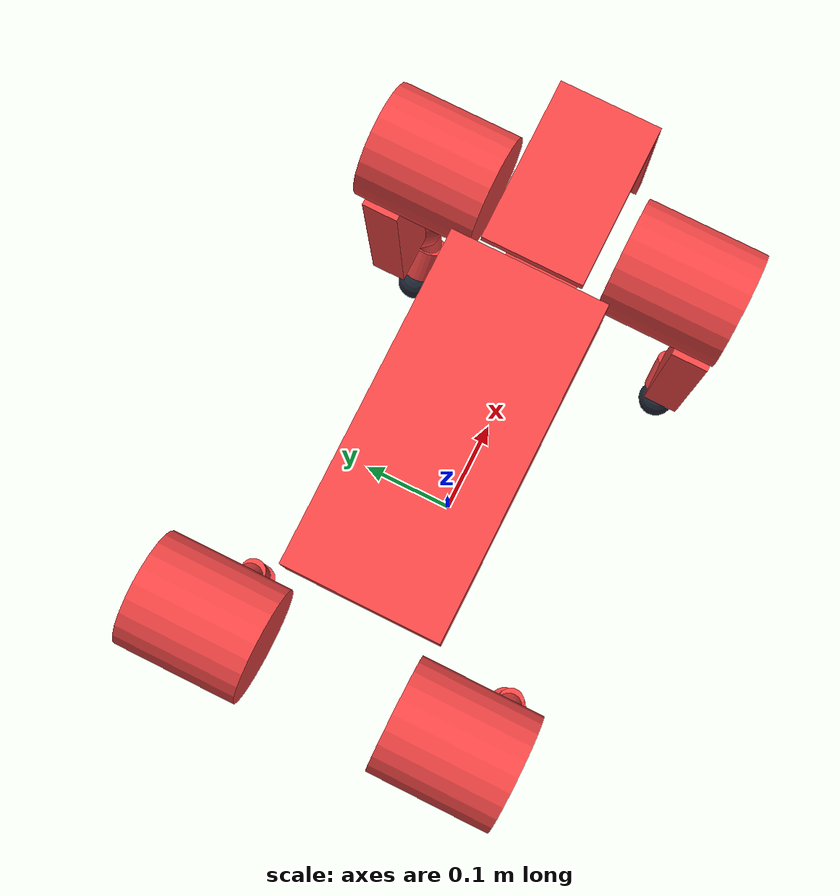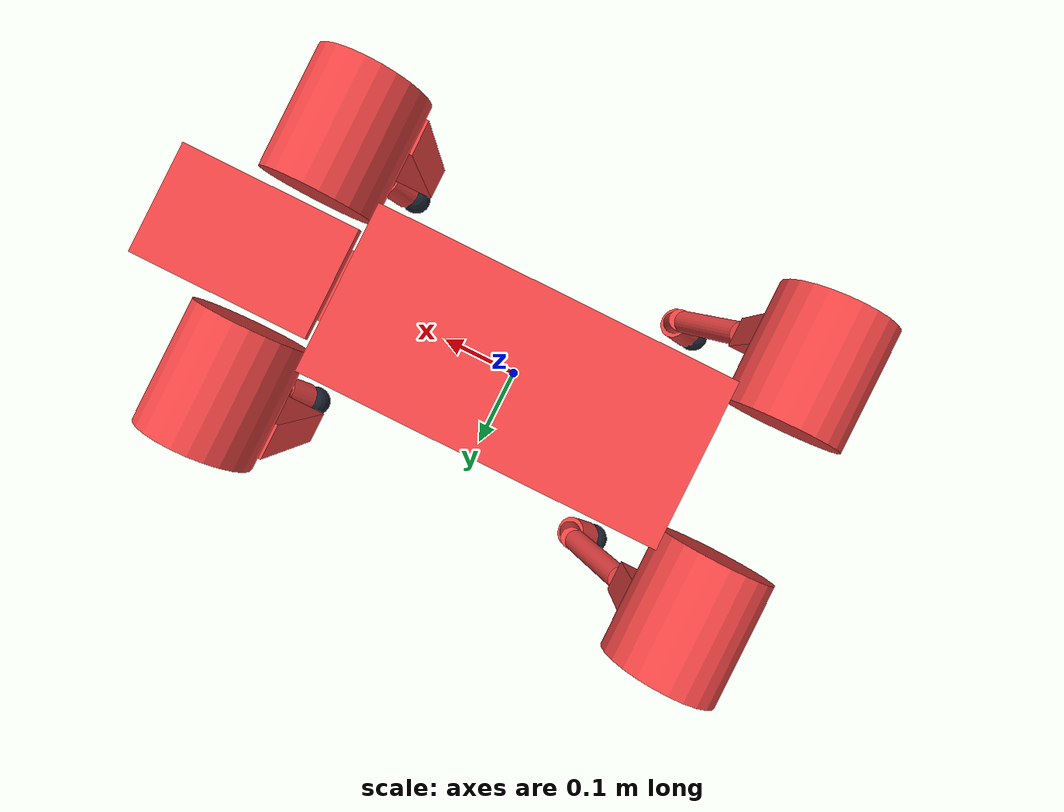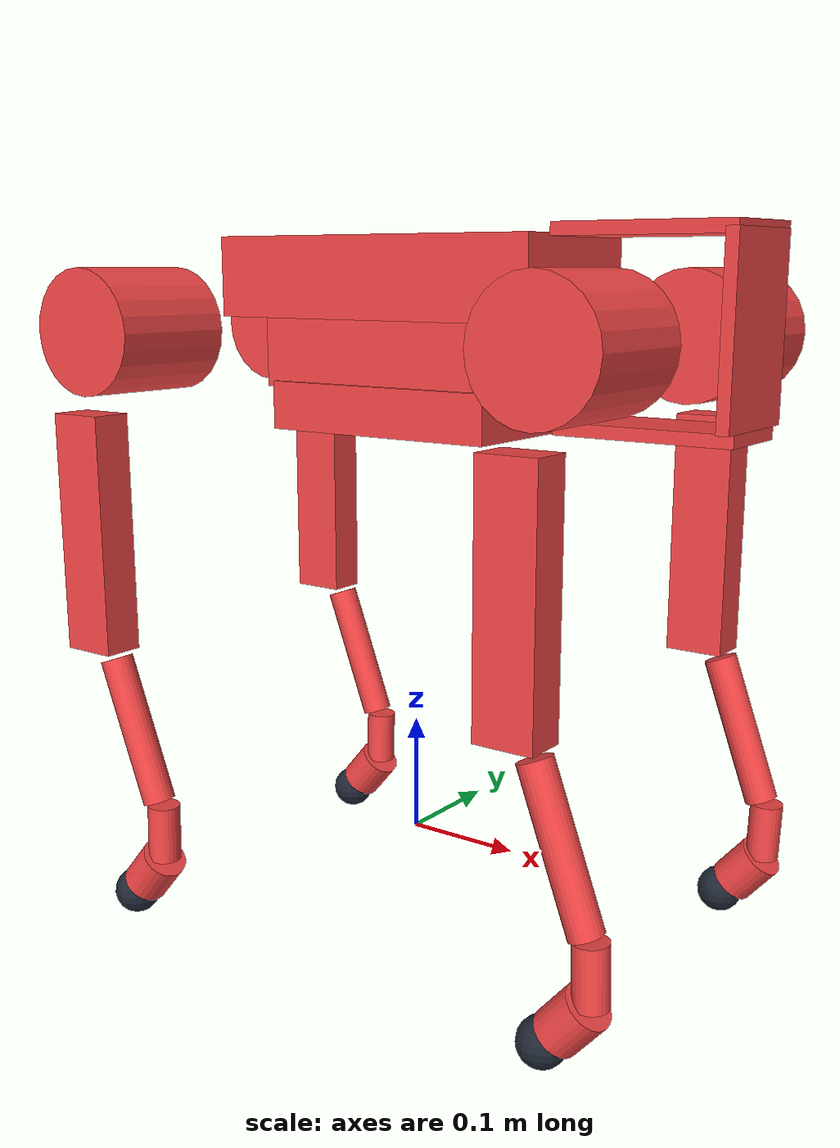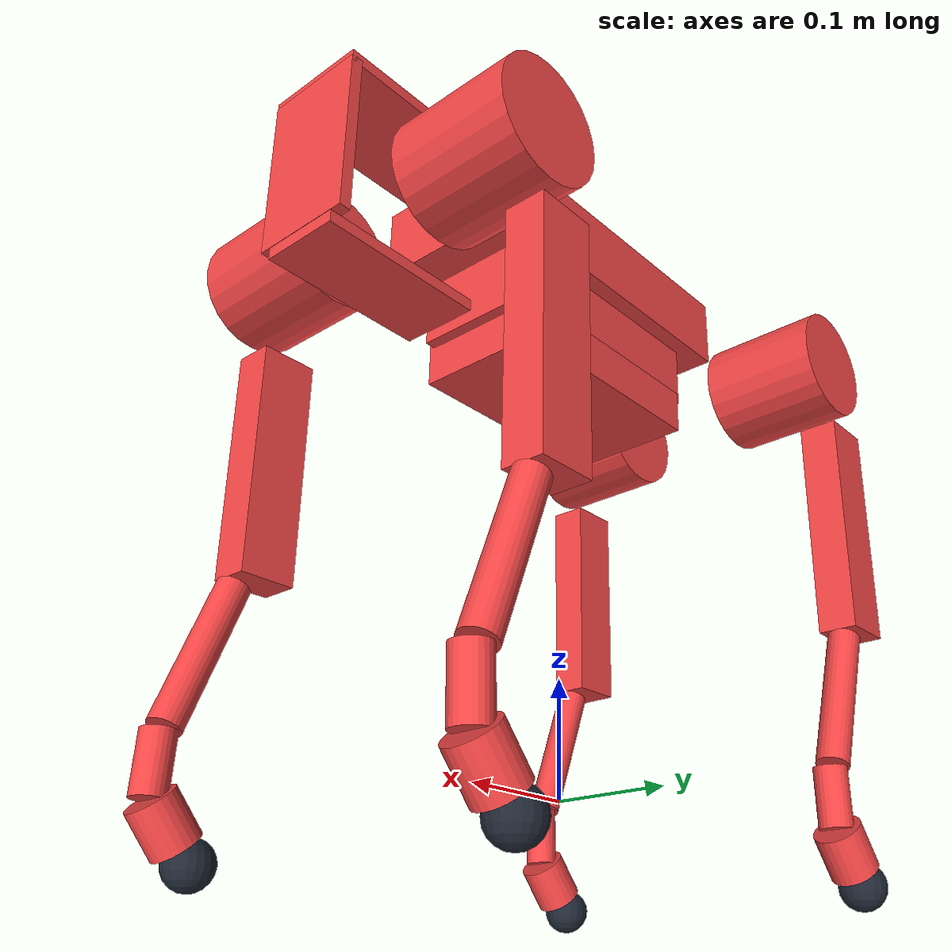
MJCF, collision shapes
<mujoco model="black_description">
  <compiler angle="radian" meshdir="assets" />
  <option timestep="0.002" gravity="0 0 -9.81" cone="elliptic" impratio="100" />

  <default>
    <joint damping="0.1" armature="0.01" frictionloss="0.2" />
  </default>
  <asset>
    <mesh name="trunk" file="trunk.STL" />
    <mesh name="d435" file="d435.stl" />
    <mesh name="FL_hip" file="FL_hip.STL" />
    <mesh name="FL_thigh" file="FL_thigh.STL" />
    <mesh name="FL_calf" file="FL_calf.STL" />
    <mesh name="FR_hip" file="FR_hip.STL" />
    <mesh name="FR_thigh" file="FR_thigh.STL" />
    <mesh name="FR_calf" file="FR_calf.STL" />
    <mesh name="RR_hip" file="RR_hip.STL" />
    <mesh name="RR_thigh" file="RR_thigh.STL" />
    <mesh name="RR_calf" file="RR_calf.STL" />
    <mesh name="RL_hip" file="RL_hip.STL" />
    <mesh name="RL_thigh" file="RL_thigh.STL" />
    <mesh name="RL_calf" file="RL_calf.STL" />
    <material name="trunk_mat" rgba="0.7529 0.7529 0.7529 1" specular="0" />
    <material name="imu_link_mat" rgba="0.8 0 0 1" specular="0" />
    <material name="d435_link_mat" rgba="0.15 0.15 0.15 1" specular="0" />
    <material name="FL_hip_mat" rgba="0.7529 0.7529 0.7529 1" specular="0" />
    <material name="FL_thigh_mat" rgba="0.7529 0.7529 0.7529 1" specular="0" />
    <material name="FL_calf_mat" rgba="0.7529 0.7529 0.7529 1" specular="0" />
    <material name="FL_foot_mat" rgba="0.1177 0.149 0.2 1" specular="0" />
    <material name="FR_hip_mat" rgba="0.7529 0.7529 0.7529 1" specular="0" />
    <material name="FR_thigh_mat" rgba="0.7529 0.7529 0.7529 1" specular="0" />
    <material name="FR_calf_mat" rgba="0.7529 0.7529 0.7529 1" specular="0" />
    <material name="FR_foot_mat" rgba="0.1177 0.149 0.2 1" specular="0" />
    <material name="RR_hip_mat" rgba="0.7529 0.7529 0.7529 1" specular="0" />
    <material name="RR_thigh_mat" rgba="0.7529 0.7529 0.7529 1" specular="0" />
    <material name="RR_calf_mat" rgba="0.7529 0.7529 0.7529 1" specular="0" />
    <material name="RR_foot_mat" rgba="0.1177 0.149 0.2 1" specular="0" />
    <material name="RL_hip_mat" rgba="0.7529 0.7529 0.7529 1" specular="0" />
    <material name="RL_thigh_mat" rgba="0.7529 0.7529 0.7529 1" specular="0" />
    <material name="RL_calf_mat" rgba="0.7529 0.7529 0.7529 1" specular="0" />
    <material name="RL_foot_mat" rgba="0.1177 0.149 0.2 1" specular="0" />
  </asset>

  <contact>
    <exclude body1="trunk" body2="FR_thigh" />
    <exclude body1="trunk" body2="FL_thigh" />
  </contact>

  <worldbody>
    <body name="trunk" pos="0 0 0.5">
      <freejoint/>
      <inertial pos="-0.013095 -0.00005 -0.074252" mass="5.7042" fullinertia="0.0092853 0.0076386 0.012703 -0.0000026 0.0000017 -0.0000276"/>
      <geom pos="0 0 0" group="1" contype="0" conaffinity="0" material="trunk_mat" type="mesh" mesh="trunk" />
      <geom pos="0 0 -0.02" rgba="0.9373 0.2667 0.2667 1" group="3" contype="1" conaffinity="1" type="box" size="0.15 0.07 0.0325" />
      <geom pos="0 0 -0.08" rgba="0.9373 0.2667 0.2667 1" group="3" contype="1" conaffinity="1" type="box" size="0.115 0.055 0.03" />
      <geom pos="0 0 -0.125" rgba="0.9373 0.2667 0.2667 1" group="3" contype="1" conaffinity="1" type="box" size="0.105 0.06 0.02" />
      <geom pos="0.225 0 -0.13" rgba="0.9373 0.2667 0.2667 1" group="3" contype="1" conaffinity="1" type="box" size="0.0725 0.035 0.005" />
      <geom pos="0.225 0 0.015" rgba="0.9373 0.2667 0.2667 1" group="3" contype="1" conaffinity="1" type="box" size="0.0725 0.045 0.005" />
      <geom pos="0.293 0 -0.055" rgba="0.9373 0.2667 0.2667 1" group="3" contype="1" conaffinity="1" type="box" size="0.005 0.045 0.07" />
      <body name="imu_link" pos="0 0 0">
        <inertial pos="0 0 0" mass="0.001" diaginertia="0.0001 0.0001 0.0001"/>
        <geom pos="0 0 0" group="1" contype="0" conaffinity="0" material="imu_link_mat" type="box" size="0.0005 0.0005 0.0005" />
        <site name="imu" pos="0 0 0" quat="1 0 0 0" />
      </body>
      <body name="d435_link" pos="0.225 0 0.028">
        <inertial pos="0 0 -0.0125" mass="0.072" diaginertia="0.00002 0.00006 0.00006"/>
        <geom pos="0.07 0 -0.08" quat="0.3155095 0.6328142 0.6328142 0.3155095" group="1" contype="0" conaffinity="0" material="d435_link_mat" type="mesh" mesh="d435" />
      </body>
      <body name="FL_hip" pos="0.1566 0.060001 -0.06425">
        <joint name="FL_hip_joint" type="hinge" axis="1 0 0" limited="true" range="-0.5 0.5"/>
        <inertial pos="0.05138 0.014784 0.0000566" mass="0.60559" fullinertia="0.0003742 0.0006493 0.0003415 -0.0000088 0.000001 -0.0000001"/>
        <geom pos="0 0 0" group="1" contype="0" conaffinity="0" material="FL_hip_mat" type="mesh" mesh="FL_hip" />
        <geom pos="0.058 0.055 0" quat="0.7071068 0.7071068 0 0" rgba="0.9373 0.2667 0.2667 1" group="3" contype="1" conaffinity="1" type="cylinder" size="0.052 0.055" />
        <body name="FL_thigh" pos="0.056 0.0336 0" quat="0.7071055 0 0 0.7071081">
          <joint name="FL_thigh_joint" type="hinge" axis="1 0 0" limited="true" range="-1.2 1.6"/>
          <inertial pos="0.041449 0.004453 -0.021946" mass="0.91168" fullinertia="0.0018577 0.0013983 0.0005179 0 -0.0000002 0.0000051"/>
          <geom pos="0 0 0" group="1" contype="0" conaffinity="0" material="FL_thigh_mat" type="mesh" mesh="FL_thigh" />
          <geom pos="0.06 0.015 -0.17" rgba="0.9373 0.2667 0.2667 1" group="3" contype="1" conaffinity="1" type="box" size="0.0175 0.025 0.1025" />
          <body name="FL_calf" pos="0.0618 0 -0.25">
            <joint name="FL_calf_joint" type="hinge" axis="1 0 0" limited="true" range="-2.5 -0.85"/>
            <inertial pos="0.0000772 -0.024754 -0.14833" mass="0.24861" fullinertia="0.000929 0.0008561 0.0000889 0 0 -0.0002168"/>
            <geom pos="0 0 0" group="1" contype="0" conaffinity="0" material="FL_calf_mat" type="mesh" mesh="FL_calf" />
            <geom pos="0 -0.025 -0.09" quat="0.9843036 -0.1764835 0 0" rgba="0.9373 0.2667 0.2667 1" group="3" contype="1" conaffinity="1" type="cylinder" size="0.014 0.065" />
            <geom pos="0 -0.052 -0.178" quat="0.9998507 0.0172779 0 0" rgba="0.9373 0.2667 0.2667 1" group="3" contype="1" conaffinity="1" type="cylinder" size="0.014 0.025" />
            <geom pos="0 -0.038 -0.218" quat="0.9396926 0.3420201 0 0" rgba="0.9373 0.2667 0.2667 1" group="3" contype="1" conaffinity="1" type="cylinder" size="0.02 0.02" />
            <body name="FL_foot" pos="0 -0.013803 -0.24433">
              <inertial pos="0 0 0" mass="0.1" diaginertia="0.000016 0.000016 0.000016"/>
              <geom pos="0 0 0" group="1" contype="0" conaffinity="0" material="FL_foot_mat" type="sphere" size="0.02" />
              <geom pos="0 0 0" rgba="0.9373 0.2667 0.2667 1" group="3" contype="1" conaffinity="1" type="sphere" size="0.02" />
            </body>
          </body>
        </body>
      </body>
      <body name="FR_hip" pos="0.1566 -0.059999 -0.06425">
        <joint name="FR_hip_joint" type="hinge" axis="1 0 0" limited="true" range="-0.5 0.5"/>
        <inertial pos="0.05138 -0.014784 -0.0000566" mass="0.60559" fullinertia="0.0003742 0.0006493 0.0003415 0.0000088 -0.000001 -0.0000001"/>
        <geom pos="0 0 0" group="1" contype="0" conaffinity="0" material="FR_hip_mat" type="mesh" mesh="FR_hip" />
        <geom pos="0.058 -0.055 0" quat="0.7071068 0.7071068 0 0" rgba="0.9373 0.2667 0.2667 1" group="3" contype="1" conaffinity="1" type="cylinder" size="0.052 0.055" />
        <body name="FR_thigh" pos="0.056 -0.0336 0" quat="0.7071055 0 0 -0.7071081">
          <joint name="FR_thigh_joint" type="hinge" axis="1 0 0" limited="true" range="-1.6 1.2"/>
          <inertial pos="0.04152 -0.0043781 -0.022024" mass="0.91491" fullinertia="0.0018577 0.0013991 0.0005172 -0.0000001 -0.0000002 -0.0000031"/>
          <geom pos="0 0 0" group="1" contype="0" conaffinity="0" material="FR_thigh_mat" type="mesh" mesh="FR_thigh" />
          <geom pos="0.06 -0.015 -0.17" rgba="0.9373 0.2667 0.2667 1" group="3" contype="1" conaffinity="1" type="box" size="0.0175 0.025 0.1025" />
          <body name="FR_calf" pos="0.0618 0 -0.25">
            <joint name="FR_calf_joint" type="hinge" axis="1 0 0" limited="true" range="0.85 2.5"/>
            <inertial pos="-0.0000772 0.024754 -0.14833" mass="0.24861" fullinertia="0.000929 0.0008561 0.0000889 0 0 0.0002168"/>
            <geom pos="0 0 0" group="1" contype="0" conaffinity="0" material="FR_calf_mat" type="mesh" mesh="FR_calf" />
            <geom pos="0 0.025 -0.09" quat="0.9843036 0.1764835 0 0" rgba="0.9373 0.2667 0.2667 1" group="3" contype="1" conaffinity="1" type="cylinder" size="0.014 0.065" />
            <geom pos="0 0.052 -0.178" quat="0.9998507 0.0172779 0 0" rgba="0.9373 0.2667 0.2667 1" group="3" contype="1" conaffinity="1" type="cylinder" size="0.014 0.025" />
            <geom pos="0 0.038 -0.218" quat="0.9396926 -0.3420201 0 0" rgba="0.9373 0.2667 0.2667 1" group="3" contype="1" conaffinity="1" type="cylinder" size="0.02 0.02" />
            <body name="FR_foot" pos="0 0.013803 -0.24433">
              <inertial pos="0 0 0" mass="0.1" diaginertia="0.000016 0.000016 0.000016"/>
              <geom pos="0 0 0" group="1" contype="0" conaffinity="0" material="FR_foot_mat" type="sphere" size="0.02" />
              <geom pos="0 0 0" rgba="0.9373 0.2667 0.2667 1" group="3" contype="1" conaffinity="1" type="sphere" size="0.02" />
            </body>
          </body>
        </body>
      </body>
      <body name="RR_hip" pos="-0.1566 -0.059999 -0.06425" quat="-0.0000037 0 0 -1">
        <joint name="RR_hip_joint" type="hinge" axis="1 0 0" limited="true" range="-0.5 0.5"/>
        <inertial pos="0.05138 0.014784 0.0000566" mass="0.60559" fullinertia="0.0003742 0.0006493 0.0003415 -0.0000088 0.000001 -0.0000001"/>
        <geom pos="0 0 0" group="1" contype="0" conaffinity="0" material="RR_hip_mat" type="mesh" mesh="RR_hip" />
        <geom pos="0.058 0.055 0" quat="0.7071068 0.7071068 0 0" rgba="0.9373 0.2667 0.2667 1" group="3" contype="1" conaffinity="1" type="cylinder" size="0.052 0.055" />
        <body name="RR_thigh" pos="0.056 0.0336 0" quat="0.7071055 0 0 0.7071081">
          <joint name="RR_thigh_joint" type="hinge" axis="1 0 0" limited="true" range="-1.6 1.2"/>
          <inertial pos="0.04152 -0.0043784 -0.022024" mass="0.91491" fullinertia="0.0018577 0.0013991 0.0005172 -0.0000001 -0.0000002 -0.0000031"/>
          <geom pos="0 0 0" group="1" contype="0" conaffinity="0" material="RR_thigh_mat" type="mesh" mesh="RR_thigh" />
          <geom pos="0.06 -0.015 -0.17" rgba="0.9373 0.2667 0.2667 1" group="3" contype="1" conaffinity="1" type="box" size="0.0175 0.025 0.1025" />
          <body name="RR_calf" pos="0.0618 0 -0.25">
            <joint name="RR_calf_joint" type="hinge" axis="1 0 0" limited="true" range="0.85 2.5"/>
            <inertial pos="-0.0000772 0.024754 -0.14833" mass="0.24861" fullinertia="0.000929 0.0008561 0.0000889 0 0 0.0002168"/>
            <geom pos="0 0 0" group="1" contype="0" conaffinity="0" material="RR_calf_mat" type="mesh" mesh="RR_calf" />
            <geom pos="0 0.025 -0.09" quat="0.9843036 0.1764835 0 0" rgba="0.9373 0.2667 0.2667 1" group="3" contype="1" conaffinity="1" type="cylinder" size="0.014 0.065" />
            <geom pos="0 0.052 -0.178" quat="0.9998507 -0.0172779 0 0" rgba="0.9373 0.2667 0.2667 1" group="3" contype="1" conaffinity="1" type="cylinder" size="0.014 0.025" />
            <geom pos="0 0.038 -0.218" quat="0.9396926 -0.3420201 0 0" rgba="0.9373 0.2667 0.2667 1" group="3" contype="1" conaffinity="1" type="cylinder" size="0.02 0.02" />
            <body name="RR_foot" pos="0 0.013803 -0.24433">
              <inertial pos="0 0 0" mass="0.1" diaginertia="0.000016 0.000016 0.000016"/>
              <geom pos="0 0 0" group="1" contype="0" conaffinity="0" material="RR_foot_mat" type="sphere" size="0.02" />
              <geom pos="0 0 0" rgba="0.9373 0.2667 0.2667 1" group="3" contype="1" conaffinity="1" type="sphere" size="0.02" />
            </body>
          </body>
        </body>
      </body>
      <body name="RL_hip" pos="-0.1566 0.060001 -0.06425" quat="-0.0000037 0 0 -1">
        <joint name="RL_hip_joint" type="hinge" axis="1 0 0" limited="true" range="-0.5 0.5"/>
        <inertial pos="0.05138 -0.014784 -0.0000566" mass="0.60559" fullinertia="0.0003742 0.0006493 0.0003415 0.0000088 -0.000001 -0.0000001"/>
        <geom pos="0 0 0" group="1" contype="0" conaffinity="0" material="RL_hip_mat" type="mesh" mesh="RL_hip" />
        <geom pos="0.058 -0.055 0" quat="0.7071068 0.7071068 0 0" rgba="0.9373 0.2667 0.2667 1" group="3" contype="1" conaffinity="1" type="cylinder" size="0.052 0.055" />
        <body name="RL_thigh" pos="0.056 -0.0336 0" quat="0.7071055 0 0 -0.7071081">
          <joint name="RL_thigh_joint" type="hinge" axis="1 0 0" limited="true" range="-1.2 1.6"/>
          <inertial pos="0.041449 0.0044527 -0.021947" mass="0.91168" fullinertia="0.0018577 0.0013983 0.0005179 0 -0.0000002 0.0000051"/>
          <geom pos="0 0 0" group="1" contype="0" conaffinity="0" material="RL_thigh_mat" type="mesh" mesh="RL_thigh" />
          <geom pos="0.06 0.015 -0.17" rgba="0.9373 0.2667 0.2667 1" group="3" contype="1" conaffinity="1" type="box" size="0.0175 0.025 0.1025" />
          <body name="RL_calf" pos="0.0618 0 -0.25">
            <joint name="RL_calf_joint" type="hinge" axis="1 0 0" limited="true" range="-2.5 -0.85"/>
            <inertial pos="0.0000772 -0.024754 -0.14833" mass="0.24861" fullinertia="0.000929 0.0008561 0.0000889 0 0 -0.0002168"/>
            <geom pos="0 0 0" group="1" contype="0" conaffinity="0" material="RL_calf_mat" type="mesh" mesh="RL_calf" />
            <geom pos="0 -0.025 -0.09" quat="0.9843036 -0.1764835 0 0" rgba="0.9373 0.2667 0.2667 1" group="3" contype="1" conaffinity="1" type="cylinder" size="0.014 0.065" />
            <geom pos="0 -0.052 -0.178" quat="0.9998507 0.0172779 0 0" rgba="0.9373 0.2667 0.2667 1" group="3" contype="1" conaffinity="1" type="cylinder" size="0.014 0.025" />
            <geom pos="0 -0.038 -0.218" quat="0.9396926 0.3420201 0 0" rgba="0.9373 0.2667 0.2667 1" group="3" contype="1" conaffinity="1" type="cylinder" size="0.02 0.02" />
            <body name="RL_foot" pos="0 -0.013803 -0.24433">
              <inertial pos="0 0 0" mass="0.1" diaginertia="0.000016 0.000016 0.000016"/>
              <geom pos="0 0 0" group="1" contype="0" conaffinity="0" material="RL_foot_mat" type="sphere" size="0.02" />
              <geom pos="0 0 0" rgba="0.9373 0.2667 0.2667 1" group="3" contype="1" conaffinity="1" type="sphere" size="0.02" />
            </body>
          </body>
        </body>
      </body>
    </body>
  </worldbody>
  <actuator>
    <motor joint="FL_hip_joint" gear="1" ctrlrange="-23.7 23.7" />
    <motor joint="FL_thigh_joint" gear="1" ctrlrange="-23.7 23.7" />
    <motor joint="FL_calf_joint" gear="1" ctrlrange="-59.25 59.25" />
    <motor joint="FR_hip_joint" gear="1" ctrlrange="-23.7 23.7" />
    <motor joint="FR_thigh_joint" gear="1" ctrlrange="-23.7 23.7" />
    <motor joint="FR_calf_joint" gear="1" ctrlrange="-59.25 59.25" />
    <motor joint="RR_hip_joint" gear="1" ctrlrange="-23.7 23.7" />
    <motor joint="RR_thigh_joint" gear="1" ctrlrange="-23.7 23.7" />
    <motor joint="RR_calf_joint" gear="1" ctrlrange="-59.25 59.25" />
    <motor joint="RL_hip_joint" gear="1" ctrlrange="-23.7 23.7" />
    <motor joint="RL_thigh_joint" gear="1" ctrlrange="-23.7 23.7" />
    <motor joint="RL_calf_joint" gear="1" ctrlrange="-59.25 59.25" />
  </actuator>

  <sensor>
    <framequat name="imu_quat" objtype="site" objname="imu" />
    <gyro name="imu_gyro" site="imu" />
    <accelerometer name="imu_acc" site="imu" />
  </sensor>

  <keyframe>
    <key name="default_pose"
         qpos="0 0 0.5 1 0 0 0
               0 0.82 -1.5
               0 -0.82 1.5
               0 -0.82 1.5
               0 0.82 -1.5"
         ctrl="0 0 0 0 0 0 0 0 0 0 0 0" />
  </keyframe>
</mujoco>
